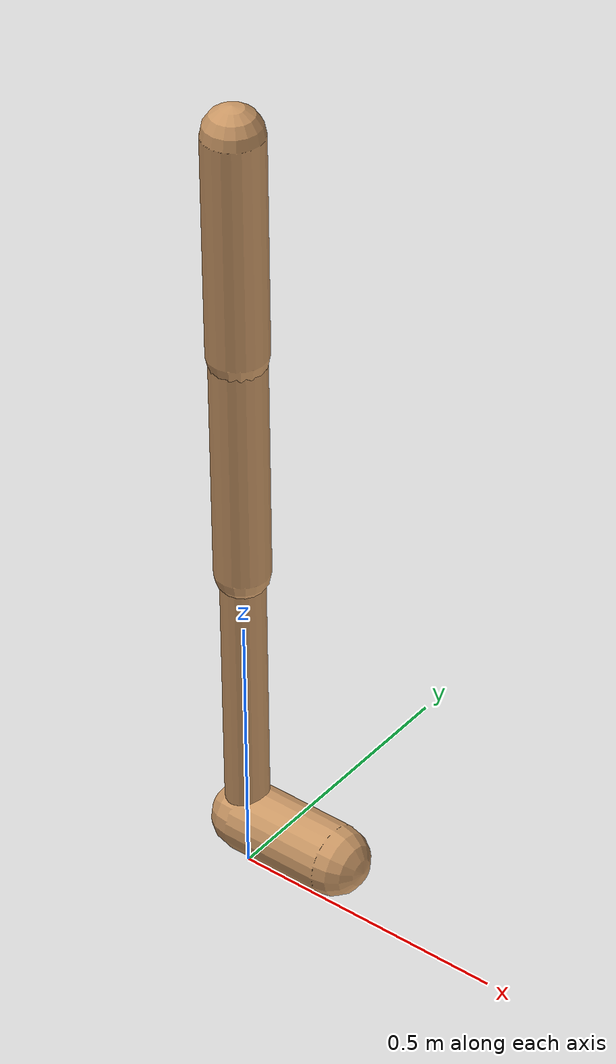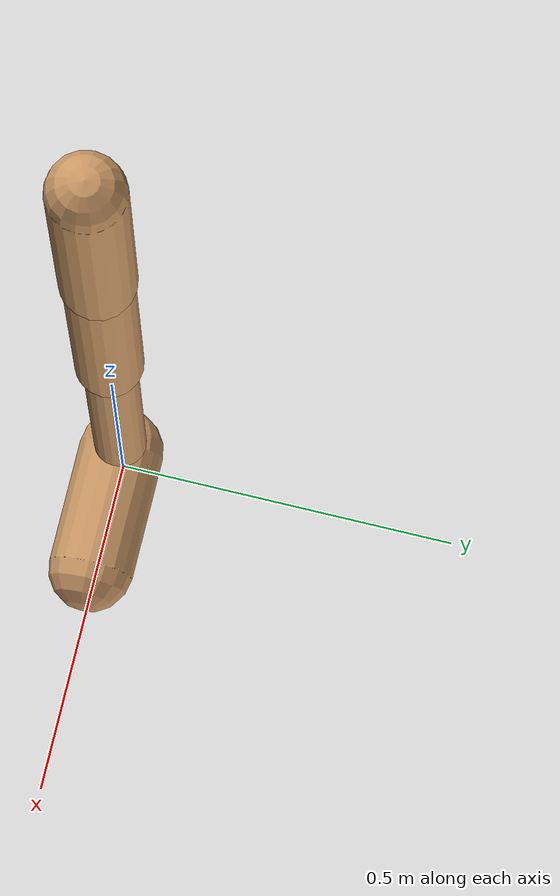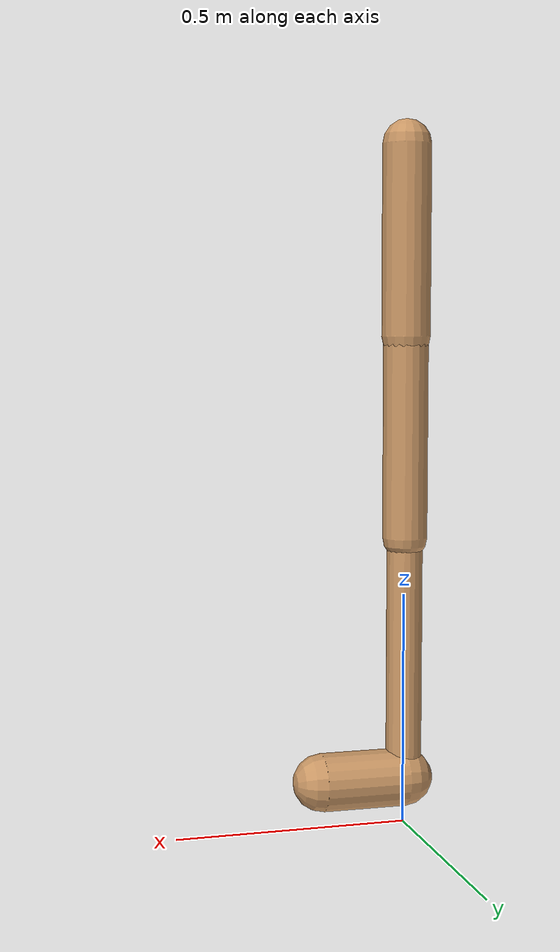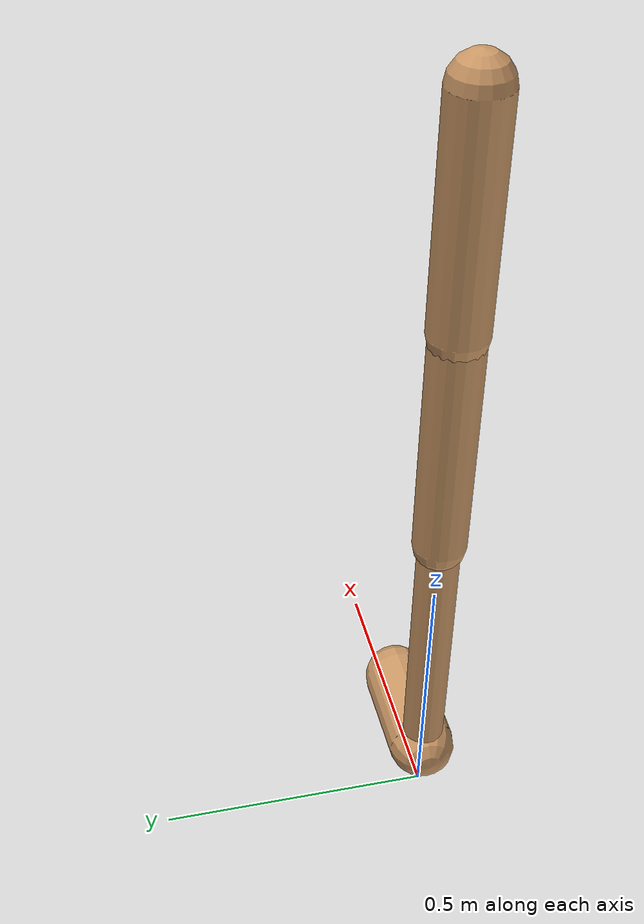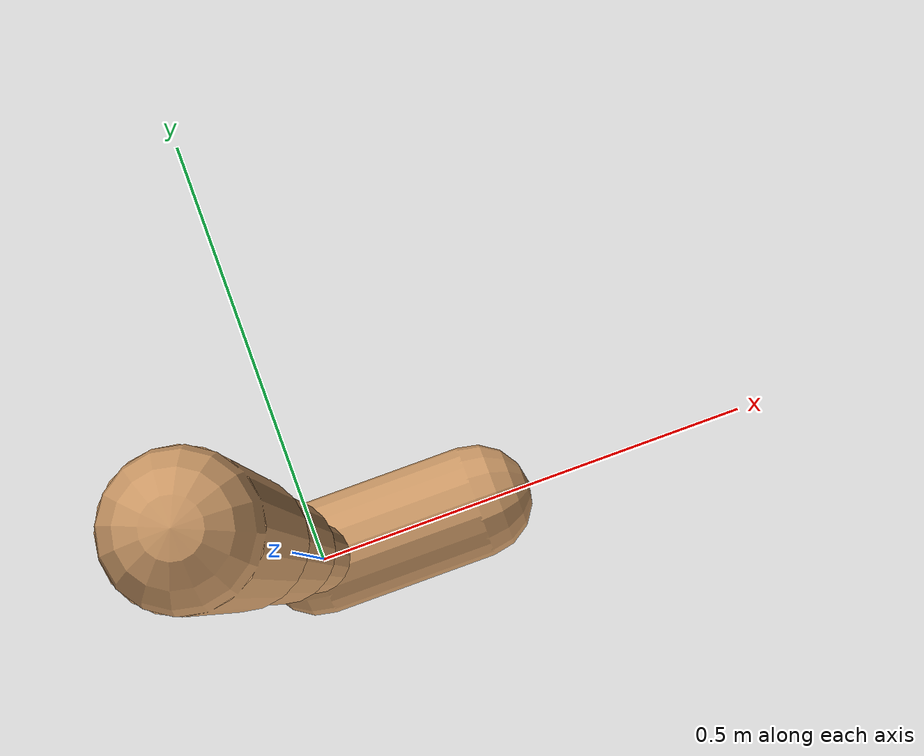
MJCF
<mujoco model="walker2d">
  <compiler angle="degree" coordinate="global" inertiafromgeom="true" />
  <default>
    <joint armature="0.01" damping=".1" limited="true" />
    <geom conaffinity="0" condim="3" contype="1" density="1000" friction="0.8 .1 .1" rgba="0.8 0.6 .4 1" />
  </default>
  <option integrator="RK4" timestep="0.002" />
  <worldbody>

    <body name="torso" pos="0 0 -0.04716429497394944">
      <joint armature="0" axis="1 0 0" damping="0" limited="false" name="ignorex" pos="0 0 0" stiffness="0" type="slide" />
      <joint armature="0" axis="0 0 1" damping="0" limited="false" name="ignorez" pos="0 0 0" ref="1.25" stiffness="0" type="slide" />
      <joint armature="0" axis="0 1 0" damping="0" limited="false" name="ignorey" pos="0 0 0" stiffness="0" type="hinge" />
      <geom fromto="0 0 1.45 0 0 1.05" name="torso_geom" size="0.05142359050460456" type="capsule" />
      <body name="thigh">
        <joint axis="0 -1 0" name="thigh_joint" pos="0 0 1.05" range="-150 0" type="hinge" />
        <geom fromto="0.0 0.0 1.05 0.0 0.0 0.6223409818297655" name="thigh_geom" size="0.04759142302014046" type="capsule" />
        <body name="leg" pos="0.0 0.0 0.022340981829765516">
          <joint axis="0 -1 0" name="leg_joint" pos="0 0 0.6" range="-150 0" type="hinge" />
          <geom fromto="0.0 0.0 0.6 0.0 0.0 0.12482331314418392" name="leg_geom" size="0.038073138416112366" type="capsule" />
          <body name="foot" pos="0.0 0.0 0.024823313144183914">
            <joint axis="0 -1 0" name="foot_joint" pos="0 0 0.1" range="-45 45" type="hinge" />
            <geom fromto="0.0 0.0 0.1 0.183383847288831 0.0 0.1" name="foot_geom" size="0.062044944007261016" type="capsule" />
          </body>
        </body>
      </body>

      <body name="thigh_left">
        <joint axis="0 -1 0" name="thigh_left_joint" pos="0 0 1.05" range="-150 0" type="hinge" />
        <geom fromto="0.0 0.0 1.05 0.0 0.0 0.6223409818297655" name="thigh_left_geom" rgba=".7 .3 .6 1" size="0.04759142302014046" type="capsule" />
        <body name="leg_left" pos="0.0 0.0 0.022340981829765516">
          <joint axis="0 -1 0" name="leg_left_joint" pos="0 0 0.6" range="-150 0" type="hinge" />
          <geom fromto="0.0 0.0 0.6 0.0 0.0 0.12482331314418392" name="leg_left_geom" rgba=".7 .3 .6 1" size="0.038073138416112366" type="capsule" />
          <body name="foot_left" pos="0.0 0.0 0.024823313144183914">
            <joint axis="0 -1 0" name="foot_left_joint" pos="0 0 0.1" range="-45 45" type="hinge" />
            <geom fromto="0.0 0.0 0.1 0.183383847288831 0.0 0.1" name="foot_left_geom" rgba=".7 .3 .6 1" size="0.062044944007261016" type="capsule" />
          </body>
        </body>
      </body>
    </body>
  </worldbody>
  <actuator>

    <motor ctrllimited="true" ctrlrange="-1.0 1.0" gear="100" joint="thigh_joint" />
    <motor ctrllimited="true" ctrlrange="-1.0 1.0" gear="100" joint="leg_joint" />
    <motor ctrllimited="true" ctrlrange="-1.0 1.0" gear="100" joint="foot_joint" />
    <motor ctrllimited="true" ctrlrange="-1.0 1.0" gear="100" joint="thigh_left_joint" />
    <motor ctrllimited="true" ctrlrange="-1.0 1.0" gear="100" joint="leg_left_joint" />
    <motor ctrllimited="true" ctrlrange="-1.0 1.0" gear="100" joint="foot_left_joint" />

  </actuator>
</mujoco>
